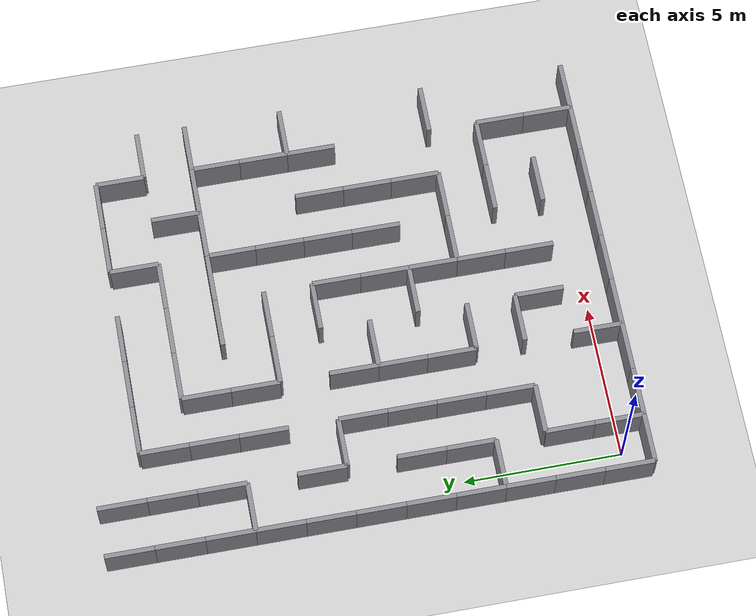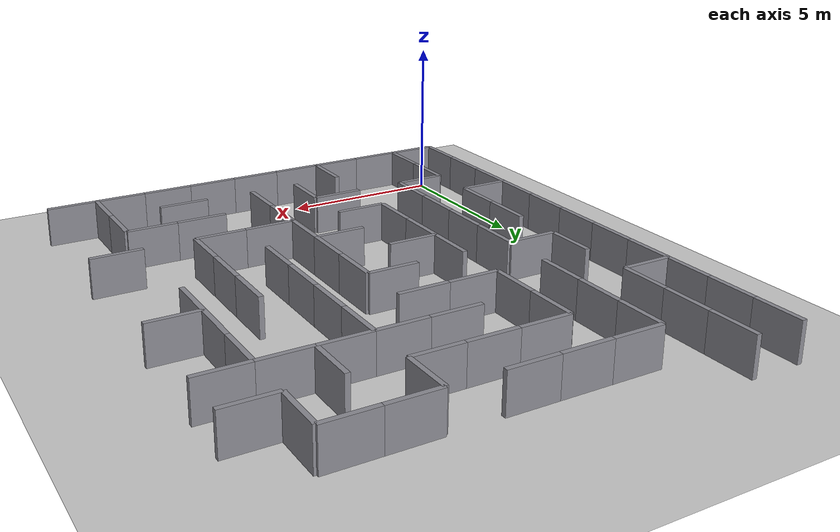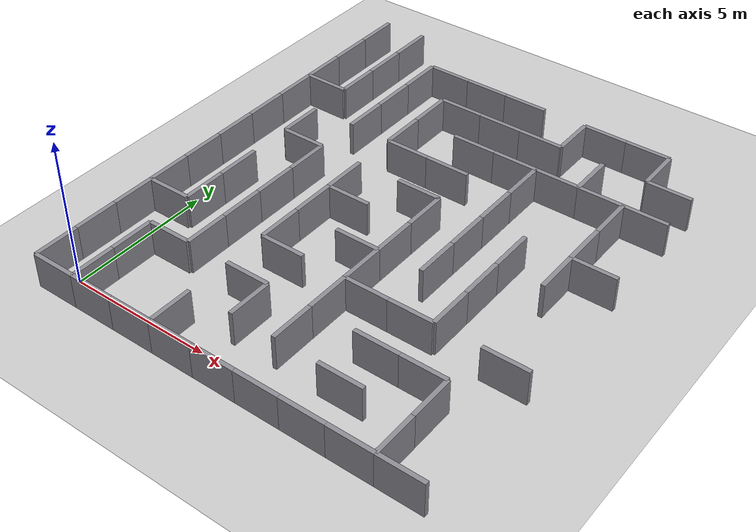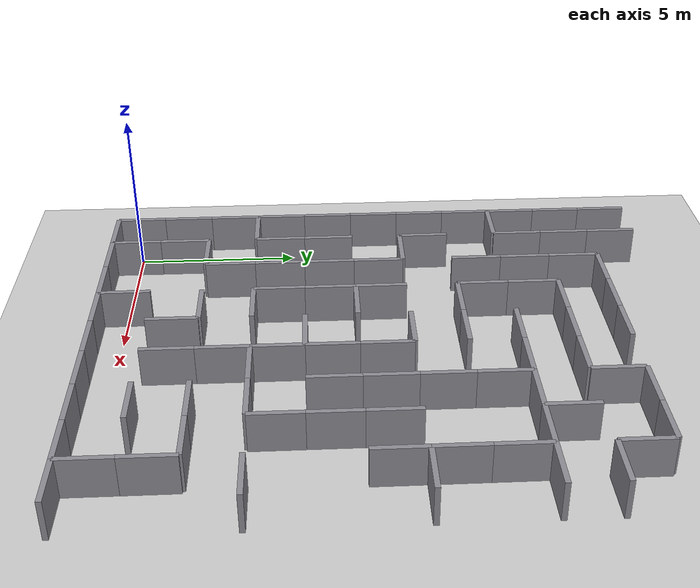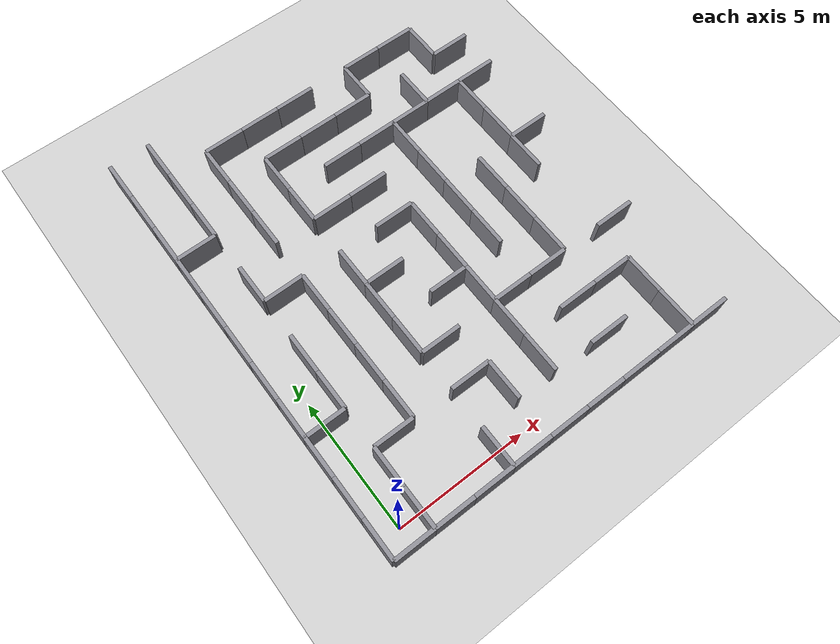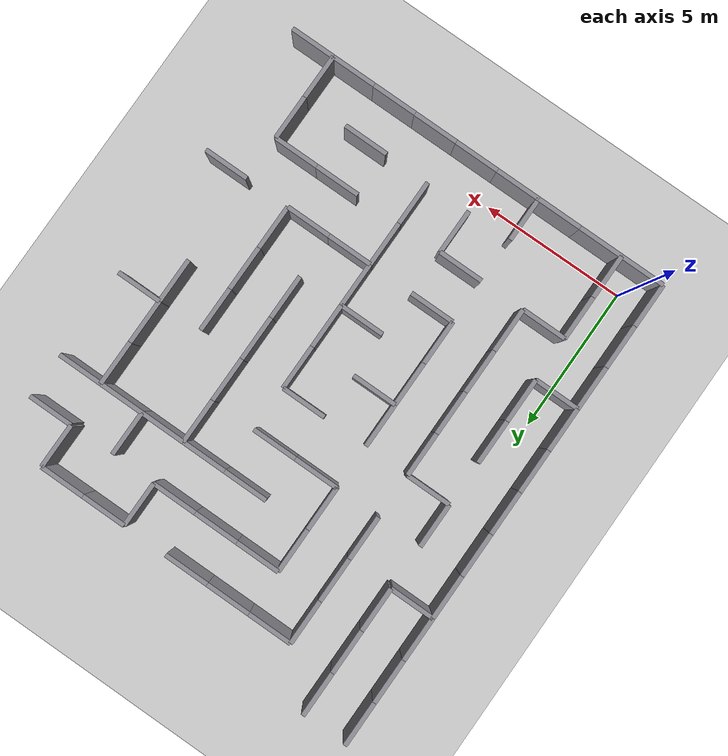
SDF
<sdf version="1.10">
 <world name="sar_maze_generated">
  <model name="ground_plane">
   <static>true</static>
   <link name="link">
    <collision name="collision">
     <geometry><plane><normal>0 0 1</normal><size>51.1 51.1</size></plane></geometry>
    </collision>
    <visual name="visual">
     <geometry><plane><normal>0 0 1</normal><size>51.1 51.1</size></plane></geometry>
     <material><ambient>0.8 0.8 0.8 1</ambient><diffuse>0.8 0.8 0.8 1</diffuse></material>
    </visual>
    <pose>16.27 16.27 0 0 0 0</pose>
    <inertial>
     <mass>1</mass>
     <inertia><ixx>1</ixx><ixy>0</ixy><ixz>0</ixz><iyy>1</iyy><iyz>0</iyz><izz>1</izz></inertia>
    </inertial>
   </link>
  </model>
  <model name="maze_structure">
   <static>true</static>
   <link name="wall_boundary_h_1">
    <static>true</static>
    <pose>0.0000 -0.7750 0.6000 0 0 0</pose>
    <collision name="wall_boundary_h_1_collision">
     <geometry><box><size>1.5500 0.1500 1.2000</size></box></geometry>
    </collision>
    <visual name="wall_boundary_h_1_visual">
     <geometry><box><size>1.5500 0.1500 1.2000</size></box></geometry>
     <material><ambient>0.55 0.55 0.58 1</ambient><diffuse>0.55 0.55 0.58 1</diffuse></material>
    </visual>
   </link>
   <link name="wall_v_2">
    <static>true</static>
    <pose>0.7750 0.0000 0.6000 0 0 0</pose>
    <collision name="wall_v_2_collision">
     <geometry><box><size>0.1500 1.5500 1.2000</size></box></geometry>
    </collision>
    <visual name="wall_v_2_visual">
     <geometry><box><size>0.1500 1.5500 1.2000</size></box></geometry>
     <material><ambient>0.55 0.55 0.58 1</ambient><diffuse>0.55 0.55 0.58 1</diffuse></material>
    </visual>
   </link>
   <link name="wall_boundary_v_3">
    <static>true</static>
    <pose>-0.7750 0.0000 0.6000 0 0 0</pose>
    <collision name="wall_boundary_v_3_collision">
     <geometry><box><size>0.1500 1.5500 1.2000</size></box></geometry>
    </collision>
    <visual name="wall_boundary_v_3_visual">
     <geometry><box><size>0.1500 1.5500 1.2000</size></box></geometry>
     <material><ambient>0.55 0.55 0.58 1</ambient><diffuse>0.55 0.55 0.58 1</diffuse></material>
    </visual>
   </link>
   <link name="wall_boundary_h_4">
    <static>true</static>
    <pose>1.5500 -0.7750 0.6000 0 0 0</pose>
    <collision name="wall_boundary_h_4_collision">
     <geometry><box><size>1.5500 0.1500 1.2000</size></box></geometry>
    </collision>
    <visual name="wall_boundary_h_4_visual">
     <geometry><box><size>1.5500 0.1500 1.2000</size></box></geometry>
     <material><ambient>0.55 0.55 0.58 1</ambient><diffuse>0.55 0.55 0.58 1</diffuse></material>
    </visual>
   </link>
   <link name="wall_boundary_h_5">
    <static>true</static>
    <pose>3.1000 -0.7750 0.6000 0 0 0</pose>
    <collision name="wall_boundary_h_5_collision">
     <geometry><box><size>1.5500 0.1500 1.2000</size></box></geometry>
    </collision>
    <visual name="wall_boundary_h_5_visual">
     <geometry><box><size>1.5500 0.1500 1.2000</size></box></geometry>
     <material><ambient>0.55 0.55 0.58 1</ambient><diffuse>0.55 0.55 0.58 1</diffuse></material>
    </visual>
   </link>
   <link name="wall_v_6">
    <static>true</static>
    <pose>3.8750 0.0000 0.6000 0 0 0</pose>
    <collision name="wall_v_6_collision">
     <geometry><box><size>0.1500 1.5500 1.2000</size></box></geometry>
    </collision>
    <visual name="wall_v_6_visual">
     <geometry><box><size>0.1500 1.5500 1.2000</size></box></geometry>
     <material><ambient>0.55 0.55 0.58 1</ambient><diffuse>0.55 0.55 0.58 1</diffuse></material>
    </visual>
   </link>
   <link name="wall_boundary_h_7">
    <static>true</static>
    <pose>4.6500 -0.7750 0.6000 0 0 0</pose>
    <collision name="wall_boundary_h_7_collision">
     <geometry><box><size>1.5500 0.1500 1.2000</size></box></geometry>
    </collision>
    <visual name="wall_boundary_h_7_visual">
     <geometry><box><size>1.5500 0.1500 1.2000</size></box></geometry>
     <material><ambient>0.55 0.55 0.58 1</ambient><diffuse>0.55 0.55 0.58 1</diffuse></material>
    </visual>
   </link>
   <link name="wall_boundary_h_8">
    <static>true</static>
    <pose>6.2000 -0.7750 0.6000 0 0 0</pose>
    <collision name="wall_boundary_h_8_collision">
     <geometry><box><size>1.5500 0.1500 1.2000</size></box></geometry>
    </collision>
    <visual name="wall_boundary_h_8_visual">
     <geometry><box><size>1.5500 0.1500 1.2000</size></box></geometry>
     <material><ambient>0.55 0.55 0.58 1</ambient><diffuse>0.55 0.55 0.58 1</diffuse></material>
    </visual>
   </link>
   <link name="wall_boundary_h_9">
    <static>true</static>
    <pose>7.7500 -0.7750 0.6000 0 0 0</pose>
    <collision name="wall_boundary_h_9_collision">
     <geometry><box><size>1.5500 0.1500 1.2000</size></box></geometry>
    </collision>
    <visual name="wall_boundary_h_9_visual">
     <geometry><box><size>1.5500 0.1500 1.2000</size></box></geometry>
     <material><ambient>0.55 0.55 0.58 1</ambient><diffuse>0.55 0.55 0.58 1</diffuse></material>
    </visual>
   </link>
   <link name="wall_h_10">
    <static>true</static>
    <pose>9.3000 0.7750 0.6000 0 0 0</pose>
    <collision name="wall_h_10_collision">
     <geometry><box><size>1.5500 0.1500 1.2000</size></box></geometry>
    </collision>
    <visual name="wall_h_10_visual">
     <geometry><box><size>1.5500 0.1500 1.2000</size></box></geometry>
     <material><ambient>0.55 0.55 0.58 1</ambient><diffuse>0.55 0.55 0.58 1</diffuse></material>
    </visual>
   </link>
   <link name="wall_boundary_h_11">
    <static>true</static>
    <pose>9.3000 -0.7750 0.6000 0 0 0</pose>
    <collision name="wall_boundary_h_11_collision">
     <geometry><box><size>1.5500 0.1500 1.2000</size></box></geometry>
    </collision>
    <visual name="wall_boundary_h_11_visual">
     <geometry><box><size>1.5500 0.1500 1.2000</size></box></geometry>
     <material><ambient>0.55 0.55 0.58 1</ambient><diffuse>0.55 0.55 0.58 1</diffuse></material>
    </visual>
   </link>
   <link name="wall_boundary_h_12">
    <static>true</static>
    <pose>10.8500 -0.7750 0.6000 0 0 0</pose>
    <collision name="wall_boundary_h_12_collision">
     <geometry><box><size>1.5500 0.1500 1.2000</size></box></geometry>
    </collision>
    <visual name="wall_boundary_h_12_visual">
     <geometry><box><size>1.5500 0.1500 1.2000</size></box></geometry>
     <material><ambient>0.55 0.55 0.58 1</ambient><diffuse>0.55 0.55 0.58 1</diffuse></material>
    </visual>
   </link>
   <link name="wall_v_13">
    <static>true</static>
    <pose>11.6250 0.0000 0.6000 0 0 0</pose>
    <collision name="wall_v_13_collision">
     <geometry><box><size>0.1500 1.5500 1.2000</size></box></geometry>
    </collision>
    <visual name="wall_v_13_visual">
     <geometry><box><size>0.1500 1.5500 1.2000</size></box></geometry>
     <material><ambient>0.55 0.55 0.58 1</ambient><diffuse>0.55 0.55 0.58 1</diffuse></material>
    </visual>
   </link>
   <link name="wall_boundary_h_14">
    <static>true</static>
    <pose>12.4000 -0.7750 0.6000 0 0 0</pose>
    <collision name="wall_boundary_h_14_collision">
     <geometry><box><size>1.5500 0.1500 1.2000</size></box></geometry>
    </collision>
    <visual name="wall_boundary_h_14_visual">
     <geometry><box><size>1.5500 0.1500 1.2000</size></box></geometry>
     <material><ambient>0.55 0.55 0.58 1</ambient><diffuse>0.55 0.55 0.58 1</diffuse></material>
    </visual>
   </link>
   <link name="wall_v_36">
    <static>true</static>
    <pose>0.7750 1.5500 0.6000 0 0 0</pose>
    <collision name="wall_v_36_collision">
     <geometry><box><size>0.1500 1.5500 1.2000</size></box></geometry>
    </collision>
    <visual name="wall_v_36_visual">
     <geometry><box><size>0.1500 1.5500 1.2000</size></box></geometry>
     <material><ambient>0.55 0.55 0.58 1</ambient><diffuse>0.55 0.55 0.58 1</diffuse></material>
    </visual>
   </link>
   <link name="wall_boundary_v_37">
    <static>true</static>
    <pose>-0.7750 1.5500 0.6000 0 0 0</pose>
    <collision name="wall_boundary_v_37_collision">
     <geometry><box><size>0.1500 1.5500 1.2000</size></box></geometry>
    </collision>
    <visual name="wall_boundary_v_37_visual">
     <geometry><box><size>0.1500 1.5500 1.2000</size></box></geometry>
     <material><ambient>0.55 0.55 0.58 1</ambient><diffuse>0.55 0.55 0.58 1</diffuse></material>
    </visual>
   </link>
   <link name="wall_h_38">
    <static>true</static>
    <pose>1.5500 2.3250 0.6000 0 0 0</pose>
    <collision name="wall_h_38_collision">
     <geometry><box><size>1.5500 0.1500 1.2000</size></box></geometry>
    </collision>
    <visual name="wall_h_38_visual">
     <geometry><box><size>1.5500 0.1500 1.2000</size></box></geometry>
     <material><ambient>0.55 0.55 0.58 1</ambient><diffuse>0.55 0.55 0.58 1</diffuse></material>
    </visual>
   </link>
   <link name="wall_h_39">
    <static>true</static>
    <pose>4.6500 2.3250 0.6000 0 0 0</pose>
    <collision name="wall_h_39_collision">
     <geometry><box><size>1.5500 0.1500 1.2000</size></box></geometry>
    </collision>
    <visual name="wall_h_39_visual">
     <geometry><box><size>1.5500 0.1500 1.2000</size></box></geometry>
     <material><ambient>0.55 0.55 0.58 1</ambient><diffuse>0.55 0.55 0.58 1</diffuse></material>
    </visual>
   </link>
   <link name="wall_v_40">
    <static>true</static>
    <pose>5.4250 1.5500 0.6000 0 0 0</pose>
    <collision name="wall_v_40_collision">
     <geometry><box><size>0.1500 1.5500 1.2000</size></box></geometry>
    </collision>
    <visual name="wall_v_40_visual">
     <geometry><box><size>0.1500 1.5500 1.2000</size></box></geometry>
     <material><ambient>0.55 0.55 0.58 1</ambient><diffuse>0.55 0.55 0.58 1</diffuse></material>
    </visual>
   </link>
   <link name="wall_v_41">
    <static>true</static>
    <pose>6.9750 1.5500 0.6000 0 0 0</pose>
    <collision name="wall_v_41_collision">
     <geometry><box><size>0.1500 1.5500 1.2000</size></box></geometry>
    </collision>
    <visual name="wall_v_41_visual">
     <geometry><box><size>0.1500 1.5500 1.2000</size></box></geometry>
     <material><ambient>0.55 0.55 0.58 1</ambient><diffuse>0.55 0.55 0.58 1</diffuse></material>
    </visual>
   </link>
   <link name="wall_h_42">
    <static>true</static>
    <pose>9.3000 2.3250 0.6000 0 0 0</pose>
    <collision name="wall_h_42_collision">
     <geometry><box><size>1.5500 0.1500 1.2000</size></box></geometry>
    </collision>
    <visual name="wall_h_42_visual">
     <geometry><box><size>1.5500 0.1500 1.2000</size></box></geometry>
     <material><ambient>0.55 0.55 0.58 1</ambient><diffuse>0.55 0.55 0.58 1</diffuse></material>
    </visual>
   </link>
   <link name="wall_h_43">
    <static>true</static>
    <pose>10.8500 2.3250 0.6000 0 0 0</pose>
    <collision name="wall_h_43_collision">
     <geometry><box><size>1.5500 0.1500 1.2000</size></box></geometry>
    </collision>
    <visual name="wall_h_43_visual">
     <geometry><box><size>1.5500 0.1500 1.2000</size></box></geometry>
     <material><ambient>0.55 0.55 0.58 1</ambient><diffuse>0.55 0.55 0.58 1</diffuse></material>
    </visual>
   </link>
   <link name="wall_v_44">
    <static>true</static>
    <pose>11.6250 1.5500 0.6000 0 0 0</pose>
    <collision name="wall_v_44_collision">
     <geometry><box><size>0.1500 1.5500 1.2000</size></box></geometry>
    </collision>
    <visual name="wall_v_44_visual">
     <geometry><box><size>0.1500 1.5500 1.2000</size></box></geometry>
     <material><ambient>0.55 0.55 0.58 1</ambient><diffuse>0.55 0.55 0.58 1</diffuse></material>
    </visual>
   </link>
   <link name="wall_h_56">
    <static>true</static>
    <pose>0.0000 3.8750 0.6000 0 0 0</pose>
    <collision name="wall_h_56_collision">
     <geometry><box><size>1.5500 0.1500 1.2000</size></box></geometry>
    </collision>
    <visual name="wall_h_56_visual">
     <geometry><box><size>1.5500 0.1500 1.2000</size></box></geometry>
     <material><ambient>0.55 0.55 0.58 1</ambient><diffuse>0.55 0.55 0.58 1</diffuse></material>
    </visual>
   </link>
   <link name="wall_boundary_v_57">
    <static>true</static>
    <pose>-0.7750 3.1000 0.6000 0 0 0</pose>
    <collision name="wall_boundary_v_57_collision">
     <geometry><box><size>0.1500 1.5500 1.2000</size></box></geometry>
    </collision>
    <visual name="wall_boundary_v_57_visual">
     <geometry><box><size>0.1500 1.5500 1.2000</size></box></geometry>
     <material><ambient>0.55 0.55 0.58 1</ambient><diffuse>0.55 0.55 0.58 1</diffuse></material>
    </visual>
   </link>
   <link name="wall_v_58">
    <static>true</static>
    <pose>2.3250 3.1000 0.6000 0 0 0</pose>
    <collision name="wall_v_58_collision">
     <geometry><box><size>0.1500 1.5500 1.2000</size></box></geometry>
    </collision>
    <visual name="wall_v_58_visual">
     <geometry><box><size>0.1500 1.5500 1.2000</size></box></geometry>
     <material><ambient>0.55 0.55 0.58 1</ambient><diffuse>0.55 0.55 0.58 1</diffuse></material>
    </visual>
   </link>
   <link name="wall_h_59">
    <static>true</static>
    <pose>4.6500 3.8750 0.6000 0 0 0</pose>
    <collision name="wall_h_59_collision">
     <geometry><box><size>1.5500 0.1500 1.2000</size></box></geometry>
    </collision>
    <visual name="wall_h_59_visual">
     <geometry><box><size>1.5500 0.1500 1.2000</size></box></geometry>
     <material><ambient>0.55 0.55 0.58 1</ambient><diffuse>0.55 0.55 0.58 1</diffuse></material>
    </visual>
   </link>
   <link name="wall_v_60">
    <static>true</static>
    <pose>6.9750 3.1000 0.6000 0 0 0</pose>
    <collision name="wall_v_60_collision">
     <geometry><box><size>0.1500 1.5500 1.2000</size></box></geometry>
    </collision>
    <visual name="wall_v_60_visual">
     <geometry><box><size>0.1500 1.5500 1.2000</size></box></geometry>
     <material><ambient>0.55 0.55 0.58 1</ambient><diffuse>0.55 0.55 0.58 1</diffuse></material>
    </visual>
   </link>
   <link name="wall_h_61">
    <static>true</static>
    <pose>7.7500 3.8750 0.6000 0 0 0</pose>
    <collision name="wall_h_61_collision">
     <geometry><box><size>1.5500 0.1500 1.2000</size></box></geometry>
    </collision>
    <visual name="wall_h_61_visual">
     <geometry><box><size>1.5500 0.1500 1.2000</size></box></geometry>
     <material><ambient>0.55 0.55 0.58 1</ambient><diffuse>0.55 0.55 0.58 1</diffuse></material>
    </visual>
   </link>
   <link name="wall_h_62">
    <static>true</static>
    <pose>9.3000 3.8750 0.6000 0 0 0</pose>
    <collision name="wall_h_62_collision">
     <geometry><box><size>1.5500 0.1500 1.2000</size></box></geometry>
    </collision>
    <visual name="wall_h_62_visual">
     <geometry><box><size>1.5500 0.1500 1.2000</size></box></geometry>
     <material><ambient>0.55 0.55 0.58 1</ambient><diffuse>0.55 0.55 0.58 1</diffuse></material>
    </visual>
   </link>
   <link name="wall_h_63">
    <static>true</static>
    <pose>12.4000 3.8750 0.6000 0 0 0</pose>
    <collision name="wall_h_63_collision">
     <geometry><box><size>1.5500 0.1500 1.2000</size></box></geometry>
    </collision>
    <visual name="wall_h_63_visual">
     <geometry><box><size>1.5500 0.1500 1.2000</size></box></geometry>
     <material><ambient>0.55 0.55 0.58 1</ambient><diffuse>0.55 0.55 0.58 1</diffuse></material>
    </visual>
   </link>
   <link name="wall_v_81">
    <static>true</static>
    <pose>0.7750 4.6500 0.6000 0 0 0</pose>
    <collision name="wall_v_81_collision">
     <geometry><box><size>0.1500 1.5500 1.2000</size></box></geometry>
    </collision>
    <visual name="wall_v_81_visual">
     <geometry><box><size>0.1500 1.5500 1.2000</size></box></geometry>
     <material><ambient>0.55 0.55 0.58 1</ambient><diffuse>0.55 0.55 0.58 1</diffuse></material>
    </visual>
   </link>
   <link name="wall_boundary_v_82">
    <static>true</static>
    <pose>-0.7750 4.6500 0.6000 0 0 0</pose>
    <collision name="wall_boundary_v_82_collision">
     <geometry><box><size>0.1500 1.5500 1.2000</size></box></geometry>
    </collision>
    <visual name="wall_boundary_v_82_visual">
     <geometry><box><size>0.1500 1.5500 1.2000</size></box></geometry>
     <material><ambient>0.55 0.55 0.58 1</ambient><diffuse>0.55 0.55 0.58 1</diffuse></material>
    </visual>
   </link>
   <link name="wall_v_83">
    <static>true</static>
    <pose>2.3250 4.6500 0.6000 0 0 0</pose>
    <collision name="wall_v_83_collision">
     <geometry><box><size>0.1500 1.5500 1.2000</size></box></geometry>
    </collision>
    <visual name="wall_v_83_visual">
     <geometry><box><size>0.1500 1.5500 1.2000</size></box></geometry>
     <material><ambient>0.55 0.55 0.58 1</ambient><diffuse>0.55 0.55 0.58 1</diffuse></material>
    </visual>
   </link>
   <link name="wall_v_84">
    <static>true</static>
    <pose>3.8750 4.6500 0.6000 0 0 0</pose>
    <collision name="wall_v_84_collision">
     <geometry><box><size>0.1500 1.5500 1.2000</size></box></geometry>
    </collision>
    <visual name="wall_v_84_visual">
     <geometry><box><size>0.1500 1.5500 1.2000</size></box></geometry>
     <material><ambient>0.55 0.55 0.58 1</ambient><diffuse>0.55 0.55 0.58 1</diffuse></material>
    </visual>
   </link>
   <link name="wall_h_85">
    <static>true</static>
    <pose>6.2000 5.4250 0.6000 0 0 0</pose>
    <collision name="wall_h_85_collision">
     <geometry><box><size>1.5500 0.1500 1.2000</size></box></geometry>
    </collision>
    <visual name="wall_h_85_visual">
     <geometry><box><size>1.5500 0.1500 1.2000</size></box></geometry>
     <material><ambient>0.55 0.55 0.58 1</ambient><diffuse>0.55 0.55 0.58 1</diffuse></material>
    </visual>
   </link>
   <link name="wall_v_86">
    <static>true</static>
    <pose>6.9750 4.6500 0.6000 0 0 0</pose>
    <collision name="wall_v_86_collision">
     <geometry><box><size>0.1500 1.5500 1.2000</size></box></geometry>
    </collision>
    <visual name="wall_v_86_visual">
     <geometry><box><size>0.1500 1.5500 1.2000</size></box></geometry>
     <material><ambient>0.55 0.55 0.58 1</ambient><diffuse>0.55 0.55 0.58 1</diffuse></material>
    </visual>
   </link>
   <link name="wall_v_87">
    <static>true</static>
    <pose>10.0750 4.6500 0.6000 0 0 0</pose>
    <collision name="wall_v_87_collision">
     <geometry><box><size>0.1500 1.5500 1.2000</size></box></geometry>
    </collision>
    <visual name="wall_v_87_visual">
     <geometry><box><size>0.1500 1.5500 1.2000</size></box></geometry>
     <material><ambient>0.55 0.55 0.58 1</ambient><diffuse>0.55 0.55 0.58 1</diffuse></material>
    </visual>
   </link>
   <link name="wall_v_99">
    <static>true</static>
    <pose>0.7750 6.2000 0.6000 0 0 0</pose>
    <collision name="wall_v_99_collision">
     <geometry><box><size>0.1500 1.5500 1.2000</size></box></geometry>
    </collision>
    <visual name="wall_v_99_visual">
     <geometry><box><size>0.1500 1.5500 1.2000</size></box></geometry>
     <material><ambient>0.55 0.55 0.58 1</ambient><diffuse>0.55 0.55 0.58 1</diffuse></material>
    </visual>
   </link>
   <link name="wall_boundary_v_100">
    <static>true</static>
    <pose>-0.7750 6.2000 0.6000 0 0 0</pose>
    <collision name="wall_boundary_v_100_collision">
     <geometry><box><size>0.1500 1.5500 1.2000</size></box></geometry>
    </collision>
    <visual name="wall_boundary_v_100_visual">
     <geometry><box><size>0.1500 1.5500 1.2000</size></box></geometry>
     <material><ambient>0.55 0.55 0.58 1</ambient><diffuse>0.55 0.55 0.58 1</diffuse></material>
    </visual>
   </link>
   <link name="wall_v_101">
    <static>true</static>
    <pose>2.3250 6.2000 0.6000 0 0 0</pose>
    <collision name="wall_v_101_collision">
     <geometry><box><size>0.1500 1.5500 1.2000</size></box></geometry>
    </collision>
    <visual name="wall_v_101_visual">
     <geometry><box><size>0.1500 1.5500 1.2000</size></box></geometry>
     <material><ambient>0.55 0.55 0.58 1</ambient><diffuse>0.55 0.55 0.58 1</diffuse></material>
    </visual>
   </link>
   <link name="wall_v_102">
    <static>true</static>
    <pose>3.8750 6.2000 0.6000 0 0 0</pose>
    <collision name="wall_v_102_collision">
     <geometry><box><size>0.1500 1.5500 1.2000</size></box></geometry>
    </collision>
    <visual name="wall_v_102_visual">
     <geometry><box><size>0.1500 1.5500 1.2000</size></box></geometry>
     <material><ambient>0.55 0.55 0.58 1</ambient><diffuse>0.55 0.55 0.58 1</diffuse></material>
    </visual>
   </link>
   <link name="wall_h_103">
    <static>true</static>
    <pose>4.6500 6.9750 0.6000 0 0 0</pose>
    <collision name="wall_h_103_collision">
     <geometry><box><size>1.5500 0.1500 1.2000</size></box></geometry>
    </collision>
    <visual name="wall_h_103_visual">
     <geometry><box><size>1.5500 0.1500 1.2000</size></box></geometry>
     <material><ambient>0.55 0.55 0.58 1</ambient><diffuse>0.55 0.55 0.58 1</diffuse></material>
    </visual>
   </link>
   <link name="wall_v_104">
    <static>true</static>
    <pose>6.9750 6.2000 0.6000 0 0 0</pose>
    <collision name="wall_v_104_collision">
     <geometry><box><size>0.1500 1.5500 1.2000</size></box></geometry>
    </collision>
    <visual name="wall_v_104_visual">
     <geometry><box><size>0.1500 1.5500 1.2000</size></box></geometry>
     <material><ambient>0.55 0.55 0.58 1</ambient><diffuse>0.55 0.55 0.58 1</diffuse></material>
    </visual>
   </link>
   <link name="wall_v_105">
    <static>true</static>
    <pose>8.5250 6.2000 0.6000 0 0 0</pose>
    <collision name="wall_v_105_collision">
     <geometry><box><size>0.1500 1.5500 1.2000</size></box></geometry>
    </collision>
    <visual name="wall_v_105_visual">
     <geometry><box><size>0.1500 1.5500 1.2000</size></box></geometry>
     <material><ambient>0.55 0.55 0.58 1</ambient><diffuse>0.55 0.55 0.58 1</diffuse></material>
    </visual>
   </link>
   <link name="wall_v_106">
    <static>true</static>
    <pose>10.0750 6.2000 0.6000 0 0 0</pose>
    <collision name="wall_v_106_collision">
     <geometry><box><size>0.1500 1.5500 1.2000</size></box></geometry>
    </collision>
    <visual name="wall_v_106_visual">
     <geometry><box><size>0.1500 1.5500 1.2000</size></box></geometry>
     <material><ambient>0.55 0.55 0.58 1</ambient><diffuse>0.55 0.55 0.58 1</diffuse></material>
    </visual>
   </link>
   <link name="wall_boundary_v_118">
    <static>true</static>
    <pose>-0.7750 7.7500 0.6000 0 0 0</pose>
    <collision name="wall_boundary_v_118_collision">
     <geometry><box><size>0.1500 1.5500 1.2000</size></box></geometry>
    </collision>
    <visual name="wall_boundary_v_118_visual">
     <geometry><box><size>0.1500 1.5500 1.2000</size></box></geometry>
     <material><ambient>0.55 0.55 0.58 1</ambient><diffuse>0.55 0.55 0.58 1</diffuse></material>
    </visual>
   </link>
   <link name="wall_h_119">
    <static>true</static>
    <pose>1.5500 8.5250 0.6000 0 0 0</pose>
    <collision name="wall_h_119_collision">
     <geometry><box><size>1.5500 0.1500 1.2000</size></box></geometry>
    </collision>
    <visual name="wall_h_119_visual">
     <geometry><box><size>1.5500 0.1500 1.2000</size></box></geometry>
     <material><ambient>0.55 0.55 0.58 1</ambient><diffuse>0.55 0.55 0.58 1</diffuse></material>
    </visual>
   </link>
   <link name="wall_v_120">
    <static>true</static>
    <pose>2.3250 7.7500 0.6000 0 0 0</pose>
    <collision name="wall_v_120_collision">
     <geometry><box><size>0.1500 1.5500 1.2000</size></box></geometry>
    </collision>
    <visual name="wall_v_120_visual">
     <geometry><box><size>0.1500 1.5500 1.2000</size></box></geometry>
     <material><ambient>0.55 0.55 0.58 1</ambient><diffuse>0.55 0.55 0.58 1</diffuse></material>
    </visual>
   </link>
   <link name="wall_v_121">
    <static>true</static>
    <pose>3.8750 7.7500 0.6000 0 0 0</pose>
    <collision name="wall_v_121_collision">
     <geometry><box><size>0.1500 1.5500 1.2000</size></box></geometry>
    </collision>
    <visual name="wall_v_121_visual">
     <geometry><box><size>0.1500 1.5500 1.2000</size></box></geometry>
     <material><ambient>0.55 0.55 0.58 1</ambient><diffuse>0.55 0.55 0.58 1</diffuse></material>
    </visual>
   </link>
   <link name="wall_h_122">
    <static>true</static>
    <pose>6.2000 8.5250 0.6000 0 0 0</pose>
    <collision name="wall_h_122_collision">
     <geometry><box><size>1.5500 0.1500 1.2000</size></box></geometry>
    </collision>
    <visual name="wall_h_122_visual">
     <geometry><box><size>1.5500 0.1500 1.2000</size></box></geometry>
     <material><ambient>0.55 0.55 0.58 1</ambient><diffuse>0.55 0.55 0.58 1</diffuse></material>
    </visual>
   </link>
   <link name="wall_v_123">
    <static>true</static>
    <pose>6.9750 7.7500 0.6000 0 0 0</pose>
    <collision name="wall_v_123_collision">
     <geometry><box><size>0.1500 1.5500 1.2000</size></box></geometry>
    </collision>
    <visual name="wall_v_123_visual">
     <geometry><box><size>0.1500 1.5500 1.2000</size></box></geometry>
     <material><ambient>0.55 0.55 0.58 1</ambient><diffuse>0.55 0.55 0.58 1</diffuse></material>
    </visual>
   </link>
   <link name="wall_v_124">
    <static>true</static>
    <pose>8.5250 7.7500 0.6000 0 0 0</pose>
    <collision name="wall_v_124_collision">
     <geometry><box><size>0.1500 1.5500 1.2000</size></box></geometry>
    </collision>
    <visual name="wall_v_124_visual">
     <geometry><box><size>0.1500 1.5500 1.2000</size></box></geometry>
     <material><ambient>0.55 0.55 0.58 1</ambient><diffuse>0.55 0.55 0.58 1</diffuse></material>
    </visual>
   </link>
   <link name="wall_v_125">
    <static>true</static>
    <pose>10.0750 7.7500 0.6000 0 0 0</pose>
    <collision name="wall_v_125_collision">
     <geometry><box><size>0.1500 1.5500 1.2000</size></box></geometry>
    </collision>
    <visual name="wall_v_125_visual">
     <geometry><box><size>0.1500 1.5500 1.2000</size></box></geometry>
     <material><ambient>0.55 0.55 0.58 1</ambient><diffuse>0.55 0.55 0.58 1</diffuse></material>
    </visual>
   </link>
   <link name="wall_v_126">
    <static>true</static>
    <pose>11.6250 7.7500 0.6000 0 0 0</pose>
    <collision name="wall_v_126_collision">
     <geometry><box><size>0.1500 1.5500 1.2000</size></box></geometry>
    </collision>
    <visual name="wall_v_126_visual">
     <geometry><box><size>0.1500 1.5500 1.2000</size></box></geometry>
     <material><ambient>0.55 0.55 0.58 1</ambient><diffuse>0.55 0.55 0.58 1</diffuse></material>
    </visual>
   </link>
   <link name="wall_h_127">
    <static>true</static>
    <pose>12.4000 8.5250 0.6000 0 0 0</pose>
    <collision name="wall_h_127_collision">
     <geometry><box><size>1.5500 0.1500 1.2000</size></box></geometry>
    </collision>
    <visual name="wall_h_127_visual">
     <geometry><box><size>1.5500 0.1500 1.2000</size></box></geometry>
     <material><ambient>0.55 0.55 0.58 1</ambient><diffuse>0.55 0.55 0.58 1</diffuse></material>
    </visual>
   </link>
   <link name="wall_v_143">
    <static>true</static>
    <pose>0.7750 9.3000 0.6000 0 0 0</pose>
    <collision name="wall_v_143_collision">
     <geometry><box><size>0.1500 1.5500 1.2000</size></box></geometry>
    </collision>
    <visual name="wall_v_143_visual">
     <geometry><box><size>0.1500 1.5500 1.2000</size></box></geometry>
     <material><ambient>0.55 0.55 0.58 1</ambient><diffuse>0.55 0.55 0.58 1</diffuse></material>
    </visual>
   </link>
   <link name="wall_boundary_v_144">
    <static>true</static>
    <pose>-0.7750 9.3000 0.6000 0 0 0</pose>
    <collision name="wall_boundary_v_144_collision">
     <geometry><box><size>0.1500 1.5500 1.2000</size></box></geometry>
    </collision>
    <visual name="wall_boundary_v_144_visual">
     <geometry><box><size>0.1500 1.5500 1.2000</size></box></geometry>
     <material><ambient>0.55 0.55 0.58 1</ambient><diffuse>0.55 0.55 0.58 1</diffuse></material>
    </visual>
   </link>
   <link name="wall_h_145">
    <static>true</static>
    <pose>4.6500 10.0750 0.6000 0 0 0</pose>
    <collision name="wall_h_145_collision">
     <geometry><box><size>1.5500 0.1500 1.2000</size></box></geometry>
    </collision>
    <visual name="wall_h_145_visual">
     <geometry><box><size>1.5500 0.1500 1.2000</size></box></geometry>
     <material><ambient>0.55 0.55 0.58 1</ambient><diffuse>0.55 0.55 0.58 1</diffuse></material>
    </visual>
   </link>
   <link name="wall_h_146">
    <static>true</static>
    <pose>6.2000 10.0750 0.6000 0 0 0</pose>
    <collision name="wall_h_146_collision">
     <geometry><box><size>1.5500 0.1500 1.2000</size></box></geometry>
    </collision>
    <visual name="wall_h_146_visual">
     <geometry><box><size>1.5500 0.1500 1.2000</size></box></geometry>
     <material><ambient>0.55 0.55 0.58 1</ambient><diffuse>0.55 0.55 0.58 1</diffuse></material>
    </visual>
   </link>
   <link name="wall_v_147">
    <static>true</static>
    <pose>8.5250 9.3000 0.6000 0 0 0</pose>
    <collision name="wall_v_147_collision">
     <geometry><box><size>0.1500 1.5500 1.2000</size></box></geometry>
    </collision>
    <visual name="wall_v_147_visual">
     <geometry><box><size>0.1500 1.5500 1.2000</size></box></geometry>
     <material><ambient>0.55 0.55 0.58 1</ambient><diffuse>0.55 0.55 0.58 1</diffuse></material>
    </visual>
   </link>
   <link name="wall_v_148">
    <static>true</static>
    <pose>11.6250 9.3000 0.6000 0 0 0</pose>
    <collision name="wall_v_148_collision">
     <geometry><box><size>0.1500 1.5500 1.2000</size></box></geometry>
    </collision>
    <visual name="wall_v_148_visual">
     <geometry><box><size>0.1500 1.5500 1.2000</size></box></geometry>
     <material><ambient>0.55 0.55 0.58 1</ambient><diffuse>0.55 0.55 0.58 1</diffuse></material>
    </visual>
   </link>
   <link name="wall_h_161">
    <static>true</static>
    <pose>0.0000 11.6250 0.6000 0 0 0</pose>
    <collision name="wall_h_161_collision">
     <geometry><box><size>1.5500 0.1500 1.2000</size></box></geometry>
    </collision>
    <visual name="wall_h_161_visual">
     <geometry><box><size>1.5500 0.1500 1.2000</size></box></geometry>
     <material><ambient>0.55 0.55 0.58 1</ambient><diffuse>0.55 0.55 0.58 1</diffuse></material>
    </visual>
   </link>
   <link name="wall_boundary_v_162">
    <static>true</static>
    <pose>-0.7750 10.8500 0.6000 0 0 0</pose>
    <collision name="wall_boundary_v_162_collision">
     <geometry><box><size>0.1500 1.5500 1.2000</size></box></geometry>
    </collision>
    <visual name="wall_boundary_v_162_visual">
     <geometry><box><size>0.1500 1.5500 1.2000</size></box></geometry>
     <material><ambient>0.55 0.55 0.58 1</ambient><diffuse>0.55 0.55 0.58 1</diffuse></material>
    </visual>
   </link>
   <link name="wall_v_163">
    <static>true</static>
    <pose>2.3250 10.8500 0.6000 0 0 0</pose>
    <collision name="wall_v_163_collision">
     <geometry><box><size>0.1500 1.5500 1.2000</size></box></geometry>
    </collision>
    <visual name="wall_v_163_visual">
     <geometry><box><size>0.1500 1.5500 1.2000</size></box></geometry>
     <material><ambient>0.55 0.55 0.58 1</ambient><diffuse>0.55 0.55 0.58 1</diffuse></material>
    </visual>
   </link>
   <link name="wall_v_164">
    <static>true</static>
    <pose>3.8750 10.8500 0.6000 0 0 0</pose>
    <collision name="wall_v_164_collision">
     <geometry><box><size>0.1500 1.5500 1.2000</size></box></geometry>
    </collision>
    <visual name="wall_v_164_visual">
     <geometry><box><size>0.1500 1.5500 1.2000</size></box></geometry>
     <material><ambient>0.55 0.55 0.58 1</ambient><diffuse>0.55 0.55 0.58 1</diffuse></material>
    </visual>
   </link>
   <link name="wall_h_165">
    <static>true</static>
    <pose>6.2000 11.6250 0.6000 0 0 0</pose>
    <collision name="wall_h_165_collision">
     <geometry><box><size>1.5500 0.1500 1.2000</size></box></geometry>
    </collision>
    <visual name="wall_h_165_visual">
     <geometry><box><size>1.5500 0.1500 1.2000</size></box></geometry>
     <material><ambient>0.55 0.55 0.58 1</ambient><diffuse>0.55 0.55 0.58 1</diffuse></material>
    </visual>
   </link>
   <link name="wall_h_166">
    <static>true</static>
    <pose>7.7500 11.6250 0.6000 0 0 0</pose>
    <collision name="wall_h_166_collision">
     <geometry><box><size>1.5500 0.1500 1.2000</size></box></geometry>
    </collision>
    <visual name="wall_h_166_visual">
     <geometry><box><size>1.5500 0.1500 1.2000</size></box></geometry>
     <material><ambient>0.55 0.55 0.58 1</ambient><diffuse>0.55 0.55 0.58 1</diffuse></material>
    </visual>
   </link>
   <link name="wall_v_167">
    <static>true</static>
    <pose>8.5250 10.8500 0.6000 0 0 0</pose>
    <collision name="wall_v_167_collision">
     <geometry><box><size>0.1500 1.5500 1.2000</size></box></geometry>
    </collision>
    <visual name="wall_v_167_visual">
     <geometry><box><size>0.1500 1.5500 1.2000</size></box></geometry>
     <material><ambient>0.55 0.55 0.58 1</ambient><diffuse>0.55 0.55 0.58 1</diffuse></material>
    </visual>
   </link>
   <link name="wall_h_168">
    <static>true</static>
    <pose>9.3000 11.6250 0.6000 0 0 0</pose>
    <collision name="wall_h_168_collision">
     <geometry><box><size>1.5500 0.1500 1.2000</size></box></geometry>
    </collision>
    <visual name="wall_h_168_visual">
     <geometry><box><size>1.5500 0.1500 1.2000</size></box></geometry>
     <material><ambient>0.55 0.55 0.58 1</ambient><diffuse>0.55 0.55 0.58 1</diffuse></material>
    </visual>
   </link>
   <link name="wall_h_169">
    <static>true</static>
    <pose>10.8500 11.6250 0.6000 0 0 0</pose>
    <collision name="wall_h_169_collision">
     <geometry><box><size>1.5500 0.1500 1.2000</size></box></geometry>
    </collision>
    <visual name="wall_h_169_visual">
     <geometry><box><size>1.5500 0.1500 1.2000</size></box></geometry>
     <material><ambient>0.55 0.55 0.58 1</ambient><diffuse>0.55 0.55 0.58 1</diffuse></material>
    </visual>
   </link>
   <link name="wall_v_170">
    <static>true</static>
    <pose>11.6250 10.8500 0.6000 0 0 0</pose>
    <collision name="wall_v_170_collision">
     <geometry><box><size>0.1500 1.5500 1.2000</size></box></geometry>
    </collision>
    <visual name="wall_v_170_visual">
     <geometry><box><size>0.1500 1.5500 1.2000</size></box></geometry>
     <material><ambient>0.55 0.55 0.58 1</ambient><diffuse>0.55 0.55 0.58 1</diffuse></material>
    </visual>
   </link>
   <link name="wall_h_171">
    <static>true</static>
    <pose>12.4000 11.6250 0.6000 0 0 0</pose>
    <collision name="wall_h_171_collision">
     <geometry><box><size>1.5500 0.1500 1.2000</size></box></geometry>
    </collision>
    <visual name="wall_h_171_visual">
     <geometry><box><size>1.5500 0.1500 1.2000</size></box></geometry>
     <material><ambient>0.55 0.55 0.58 1</ambient><diffuse>0.55 0.55 0.58 1</diffuse></material>
    </visual>
   </link>
   <link name="wall_v_186">
    <static>true</static>
    <pose>0.7750 12.4000 0.6000 0 0 0</pose>
    <collision name="wall_v_186_collision">
     <geometry><box><size>0.1500 1.5500 1.2000</size></box></geometry>
    </collision>
    <visual name="wall_v_186_visual">
     <geometry><box><size>0.1500 1.5500 1.2000</size></box></geometry>
     <material><ambient>0.55 0.55 0.58 1</ambient><diffuse>0.55 0.55 0.58 1</diffuse></material>
    </visual>
   </link>
   <link name="wall_boundary_v_187">
    <static>true</static>
    <pose>-0.7750 12.4000 0.6000 0 0 0</pose>
    <collision name="wall_boundary_v_187_collision">
     <geometry><box><size>0.1500 1.5500 1.2000</size></box></geometry>
    </collision>
    <visual name="wall_boundary_v_187_visual">
     <geometry><box><size>0.1500 1.5500 1.2000</size></box></geometry>
     <material><ambient>0.55 0.55 0.58 1</ambient><diffuse>0.55 0.55 0.58 1</diffuse></material>
    </visual>
   </link>
   <link name="wall_v_188">
    <static>true</static>
    <pose>2.3250 12.4000 0.6000 0 0 0</pose>
    <collision name="wall_v_188_collision">
     <geometry><box><size>0.1500 1.5500 1.2000</size></box></geometry>
    </collision>
    <visual name="wall_v_188_visual">
     <geometry><box><size>0.1500 1.5500 1.2000</size></box></geometry>
     <material><ambient>0.55 0.55 0.58 1</ambient><diffuse>0.55 0.55 0.58 1</diffuse></material>
    </visual>
   </link>
   <link name="wall_v_189">
    <static>true</static>
    <pose>3.8750 12.4000 0.6000 0 0 0</pose>
    <collision name="wall_v_189_collision">
     <geometry><box><size>0.1500 1.5500 1.2000</size></box></geometry>
    </collision>
    <visual name="wall_v_189_visual">
     <geometry><box><size>0.1500 1.5500 1.2000</size></box></geometry>
     <material><ambient>0.55 0.55 0.58 1</ambient><diffuse>0.55 0.55 0.58 1</diffuse></material>
    </visual>
   </link>
   <link name="wall_h_190">
    <static>true</static>
    <pose>4.6500 13.1750 0.6000 0 0 0</pose>
    <collision name="wall_h_190_collision">
     <geometry><box><size>1.5500 0.1500 1.2000</size></box></geometry>
    </collision>
    <visual name="wall_h_190_visual">
     <geometry><box><size>1.5500 0.1500 1.2000</size></box></geometry>
     <material><ambient>0.55 0.55 0.58 1</ambient><diffuse>0.55 0.55 0.58 1</diffuse></material>
    </visual>
   </link>
   <link name="wall_h_191">
    <static>true</static>
    <pose>6.2000 13.1750 0.6000 0 0 0</pose>
    <collision name="wall_h_191_collision">
     <geometry><box><size>1.5500 0.1500 1.2000</size></box></geometry>
    </collision>
    <visual name="wall_h_191_visual">
     <geometry><box><size>1.5500 0.1500 1.2000</size></box></geometry>
     <material><ambient>0.55 0.55 0.58 1</ambient><diffuse>0.55 0.55 0.58 1</diffuse></material>
    </visual>
   </link>
   <link name="wall_h_192">
    <static>true</static>
    <pose>7.7500 13.1750 0.6000 0 0 0</pose>
    <collision name="wall_h_192_collision">
     <geometry><box><size>1.5500 0.1500 1.2000</size></box></geometry>
    </collision>
    <visual name="wall_h_192_visual">
     <geometry><box><size>1.5500 0.1500 1.2000</size></box></geometry>
     <material><ambient>0.55 0.55 0.58 1</ambient><diffuse>0.55 0.55 0.58 1</diffuse></material>
    </visual>
   </link>
   <link name="wall_v_193">
    <static>true</static>
    <pose>10.0750 12.4000 0.6000 0 0 0</pose>
    <collision name="wall_v_193_collision">
     <geometry><box><size>0.1500 1.5500 1.2000</size></box></geometry>
    </collision>
    <visual name="wall_v_193_visual">
     <geometry><box><size>0.1500 1.5500 1.2000</size></box></geometry>
     <material><ambient>0.55 0.55 0.58 1</ambient><diffuse>0.55 0.55 0.58 1</diffuse></material>
    </visual>
   </link>
   <link name="wall_h_194">
    <static>true</static>
    <pose>12.4000 13.1750 0.6000 0 0 0</pose>
    <collision name="wall_h_194_collision">
     <geometry><box><size>1.5500 0.1500 1.2000</size></box></geometry>
    </collision>
    <visual name="wall_h_194_visual">
     <geometry><box><size>1.5500 0.1500 1.2000</size></box></geometry>
     <material><ambient>0.55 0.55 0.58 1</ambient><diffuse>0.55 0.55 0.58 1</diffuse></material>
    </visual>
   </link>
   <link name="wall_v_208">
    <static>true</static>
    <pose>0.7750 13.9500 0.6000 0 0 0</pose>
    <collision name="wall_v_208_collision">
     <geometry><box><size>0.1500 1.5500 1.2000</size></box></geometry>
    </collision>
    <visual name="wall_v_208_visual">
     <geometry><box><size>0.1500 1.5500 1.2000</size></box></geometry>
     <material><ambient>0.55 0.55 0.58 1</ambient><diffuse>0.55 0.55 0.58 1</diffuse></material>
    </visual>
   </link>
   <link name="wall_boundary_v_209">
    <static>true</static>
    <pose>-0.7750 13.9500 0.6000 0 0 0</pose>
    <collision name="wall_boundary_v_209_collision">
     <geometry><box><size>0.1500 1.5500 1.2000</size></box></geometry>
    </collision>
    <visual name="wall_boundary_v_209_visual">
     <geometry><box><size>0.1500 1.5500 1.2000</size></box></geometry>
     <material><ambient>0.55 0.55 0.58 1</ambient><diffuse>0.55 0.55 0.58 1</diffuse></material>
    </visual>
   </link>
   <link name="wall_v_210">
    <static>true</static>
    <pose>2.3250 13.9500 0.6000 0 0 0</pose>
    <collision name="wall_v_210_collision">
     <geometry><box><size>0.1500 1.5500 1.2000</size></box></geometry>
    </collision>
    <visual name="wall_v_210_visual">
     <geometry><box><size>0.1500 1.5500 1.2000</size></box></geometry>
     <material><ambient>0.55 0.55 0.58 1</ambient><diffuse>0.55 0.55 0.58 1</diffuse></material>
    </visual>
   </link>
   <link name="wall_h_211">
    <static>true</static>
    <pose>3.1000 14.7250 0.6000 0 0 0</pose>
    <collision name="wall_h_211_collision">
     <geometry><box><size>1.5500 0.1500 1.2000</size></box></geometry>
    </collision>
    <visual name="wall_h_211_visual">
     <geometry><box><size>1.5500 0.1500 1.2000</size></box></geometry>
     <material><ambient>0.55 0.55 0.58 1</ambient><diffuse>0.55 0.55 0.58 1</diffuse></material>
    </visual>
   </link>
   <link name="wall_h_212">
    <static>true</static>
    <pose>4.6500 14.7250 0.6000 0 0 0</pose>
    <collision name="wall_h_212_collision">
     <geometry><box><size>1.5500 0.1500 1.2000</size></box></geometry>
    </collision>
    <visual name="wall_h_212_visual">
     <geometry><box><size>1.5500 0.1500 1.2000</size></box></geometry>
     <material><ambient>0.55 0.55 0.58 1</ambient><diffuse>0.55 0.55 0.58 1</diffuse></material>
    </visual>
   </link>
   <link name="wall_h_213">
    <static>true</static>
    <pose>6.2000 14.7250 0.6000 0 0 0</pose>
    <collision name="wall_h_213_collision">
     <geometry><box><size>1.5500 0.1500 1.2000</size></box></geometry>
    </collision>
    <visual name="wall_h_213_visual">
     <geometry><box><size>1.5500 0.1500 1.2000</size></box></geometry>
     <material><ambient>0.55 0.55 0.58 1</ambient><diffuse>0.55 0.55 0.58 1</diffuse></material>
    </visual>
   </link>
   <link name="wall_v_214">
    <static>true</static>
    <pose>8.5250 13.9500 0.6000 0 0 0</pose>
    <collision name="wall_v_214_collision">
     <geometry><box><size>0.1500 1.5500 1.2000</size></box></geometry>
    </collision>
    <visual name="wall_v_214_visual">
     <geometry><box><size>0.1500 1.5500 1.2000</size></box></geometry>
     <material><ambient>0.55 0.55 0.58 1</ambient><diffuse>0.55 0.55 0.58 1</diffuse></material>
    </visual>
   </link>
   <link name="wall_h_215">
    <static>true</static>
    <pose>9.3000 14.7250 0.6000 0 0 0</pose>
    <collision name="wall_h_215_collision">
     <geometry><box><size>1.5500 0.1500 1.2000</size></box></geometry>
    </collision>
    <visual name="wall_h_215_visual">
     <geometry><box><size>1.5500 0.1500 1.2000</size></box></geometry>
     <material><ambient>0.55 0.55 0.58 1</ambient><diffuse>0.55 0.55 0.58 1</diffuse></material>
    </visual>
   </link>
   <link name="wall_h_216">
    <static>true</static>
    <pose>10.8500 14.7250 0.6000 0 0 0</pose>
    <collision name="wall_h_216_collision">
     <geometry><box><size>1.5500 0.1500 1.2000</size></box></geometry>
    </collision>
    <visual name="wall_h_216_visual">
     <geometry><box><size>1.5500 0.1500 1.2000</size></box></geometry>
     <material><ambient>0.55 0.55 0.58 1</ambient><diffuse>0.55 0.55 0.58 1</diffuse></material>
    </visual>
   </link>
   <link name="wall_v_217">
    <static>true</static>
    <pose>11.6250 13.9500 0.6000 0 0 0</pose>
    <collision name="wall_v_217_collision">
     <geometry><box><size>0.1500 1.5500 1.2000</size></box></geometry>
    </collision>
    <visual name="wall_v_217_visual">
     <geometry><box><size>0.1500 1.5500 1.2000</size></box></geometry>
     <material><ambient>0.55 0.55 0.58 1</ambient><diffuse>0.55 0.55 0.58 1</diffuse></material>
    </visual>
   </link>
   <link name="wall_v_229">
    <static>true</static>
    <pose>0.7750 15.5000 0.6000 0 0 0</pose>
    <collision name="wall_v_229_collision">
     <geometry><box><size>0.1500 1.5500 1.2000</size></box></geometry>
    </collision>
    <visual name="wall_v_229_visual">
     <geometry><box><size>0.1500 1.5500 1.2000</size></box></geometry>
     <material><ambient>0.55 0.55 0.58 1</ambient><diffuse>0.55 0.55 0.58 1</diffuse></material>
    </visual>
   </link>
   <link name="wall_boundary_v_230">
    <static>true</static>
    <pose>-0.7750 15.5000 0.6000 0 0 0</pose>
    <collision name="wall_boundary_v_230_collision">
     <geometry><box><size>0.1500 1.5500 1.2000</size></box></geometry>
    </collision>
    <visual name="wall_boundary_v_230_visual">
     <geometry><box><size>0.1500 1.5500 1.2000</size></box></geometry>
     <material><ambient>0.55 0.55 0.58 1</ambient><diffuse>0.55 0.55 0.58 1</diffuse></material>
    </visual>
   </link>
  </model>
 </world>
</sdf>
